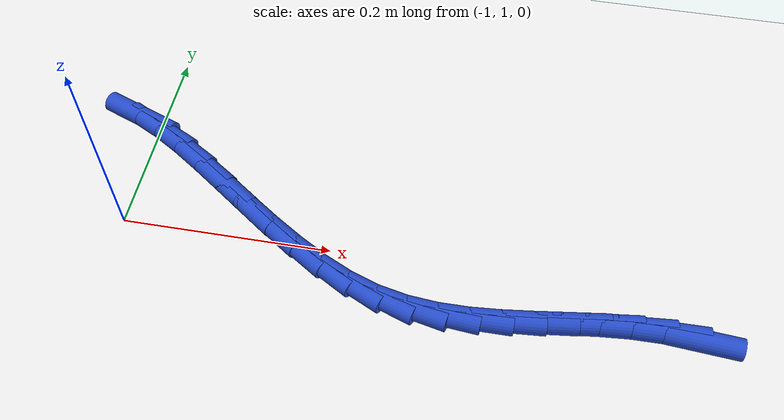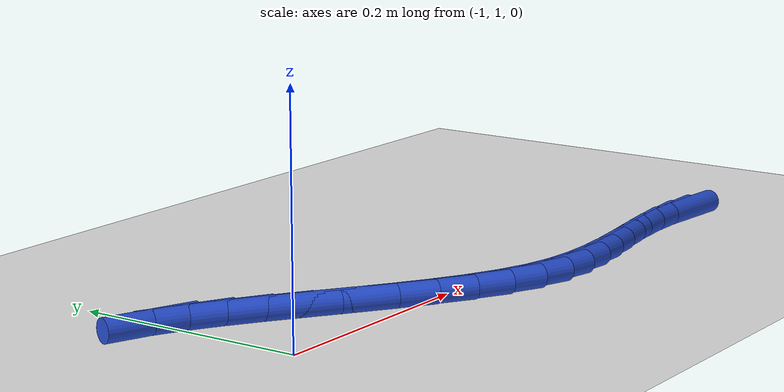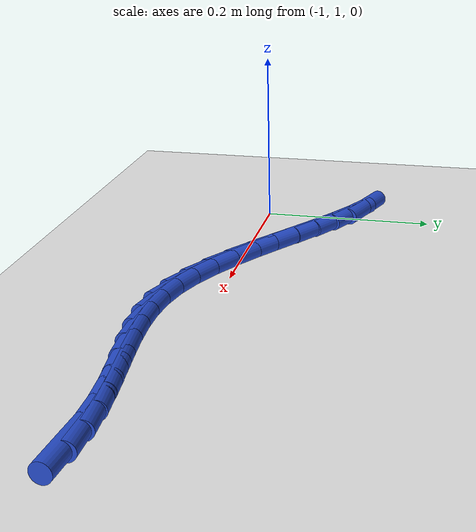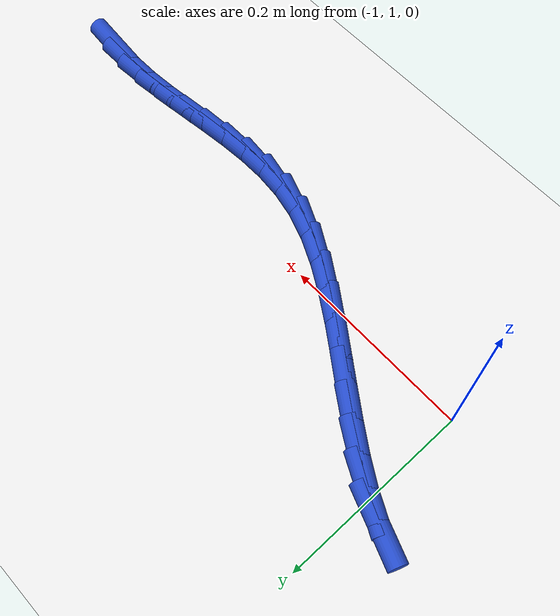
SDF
<sdf version="1.6">
 <world name="default">
  <model name="ground_plane">
   <static>1</static>
   <link name="link">
    <collision name="collision">
     <geometry><plane><normal>0 0 1</normal><size>100 100</size></plane></geometry>
     <surface><friction><ode><mu>100</mu><mu2>50</mu2></ode></friction></surface>
    </collision>
    <visual name="visual">
     <cast_shadows>0</cast_shadows>
     <geometry><plane><normal>0 0 1</normal><size>100 100</size></plane></geometry>
     <material>
      <script><uri>file://media/materials/scripts/gazebo.material</uri><name>Gazebo/WhiteGlow</name></script>
     </material>
    </visual>
   </link>
  </model>
  <model name="line">
   <link name="link_40">
    <pose>-0.46919206118875145 0.9611833768286024 0.01 0 1.57 -0.07848373821105482</pose>
    <collision name="collision">
     <geometry><cylinder><radius>0.01</radius><length>0.08</length></cylinder></geometry>
    </collision>
    <visual name="visual">
     <material>
      <script><name>Gazebo/Blue</name><uri>file://media/materials/scripts/gazebo.material</uri></script>
     </material>
     <geometry><cylinder><radius>0.01</radius><length>0.08</length></cylinder></geometry>
    </visual>
   </link>
   <link name="link_41">
    <pose>-0.49723121199268305 0.9633885237393826 0.01 0 1.57 0.01634159145770869</pose>
    <collision name="collision">
     <geometry><cylinder><radius>0.01</radius><length>0.08</length></cylinder></geometry>
    </collision>
    <visual name="visual">
     <material>
      <script><name>Gazebo/Blue</name><uri>file://media/materials/scripts/gazebo.material</uri></script>
     </material>
     <geometry><cylinder><radius>0.01</radius><length>0.08</length></cylinder></geometry>
    </visual>
   </link>
   <link name="link_42">
    <pose>-0.5252464171446485 0.9629306699452056 0.01 0 1.57 0.08371373332486362</pose>
    <collision name="collision">
     <geometry><cylinder><radius>0.01</radius><length>0.08</length></cylinder></geometry>
    </collision>
    <visual name="visual">
     <material>
      <script><name>Gazebo/Blue</name><uri>file://media/materials/scripts/gazebo.material</uri></script>
     </material>
     <geometry><cylinder><radius>0.01</radius><length>0.08</length></cylinder></geometry>
    </visual>
   </link>
   <link name="link_43">
    <pose>-0.5532449406345098 0.9605813183737756 0.01 0 1.57 0.12329362729203241</pose>
    <collision name="collision">
     <geometry><cylinder><radius>0.01</radius><length>0.08</length></cylinder></geometry>
    </collision>
    <visual name="visual">
     <material>
      <script><name>Gazebo/Blue</name><uri>file://media/materials/scripts/gazebo.material</uri></script>
     </material>
     <geometry><cylinder><radius>0.01</radius><length>0.08</length></cylinder></geometry>
    </visual>
   </link>
   <link name="link_44">
    <pose>-0.5812343561871295 0.9571128086605015 0.01 0 1.57 0.13548558379407333</pose>
    <collision name="collision">
     <geometry><cylinder><radius>0.01</radius><length>0.08</length></cylinder></geometry>
    </collision>
    <visual name="visual">
     <material>
      <script><name>Gazebo/Blue</name><uri>file://media/materials/scripts/gazebo.material</uri></script>
     </material>
     <geometry><cylinder><radius>0.01</radius><length>0.08</length></cylinder></geometry>
    </visual>
   </link>
   <link name="link_45">
    <pose>-0.6092222375273703 0.9532974804407918 0.01 0 1.57 0.12050413117563119</pose>
    <collision name="collision">
     <geometry><cylinder><radius>0.01</radius><length>0.08</length></cylinder></geometry>
    </collision>
    <visual name="visual">
     <material>
      <script><name>Gazebo/Blue</name><uri>file://media/materials/scripts/gazebo.material</uri></script>
     </material>
     <geometry><cylinder><radius>0.01</radius><length>0.08</length></cylinder></geometry>
    </visual>
   </link>
   <link name="link_46">
    <pose>-0.6372161583800946 0.9499076733500558 0.01 0 1.57 0.07810353562635447</pose>
    <collision name="collision">
     <geometry><cylinder><radius>0.01</radius><length>0.08</length></cylinder></geometry>
    </collision>
    <visual name="visual">
     <material>
      <script><name>Gazebo/Blue</name><uri>file://media/materials/scripts/gazebo.material</uri></script>
     </material>
     <geometry><cylinder><radius>0.01</radius><length>0.08</length></cylinder></geometry>
    </visual>
   </link>
   <link name="link_47">
    <pose>-0.6652236924701649 0.9477157270237014 0.01 0 1.57 0.007911217210608718</pose>
    <collision name="collision">
     <geometry><cylinder><radius>0.01</radius><length>0.08</length></cylinder></geometry>
    </collision>
    <visual name="visual">
     <material>
      <script><name>Gazebo/Blue</name><uri>file://media/materials/scripts/gazebo.material</uri></script>
     </material>
     <geometry><cylinder><radius>0.01</radius><length>0.08</length></cylinder></geometry>
    </visual>
   </link>
   <link name="link_48">
    <pose>-0.6932524135224438 0.9474939810971381 0.01 0 1.57 -0.08960334484534141</pose>
    <collision name="collision">
     <geometry><cylinder><radius>0.01</radius><length>0.08</length></cylinder></geometry>
    </collision>
    <visual name="visual">
     <material>
      <script><name>Gazebo/Blue</name><uri>file://media/materials/scripts/gazebo.material</uri></script>
     </material>
     <geometry><cylinder><radius>0.01</radius><length>0.08</length></cylinder></geometry>
    </visual>
   </link>
   <link name="link_49">
    <pose>-0.7213098952617942 0.9500147752057746 0.01 0 1.57 -0.21162316478883456</pose>
    <collision name="collision">
     <geometry><cylinder><radius>0.01</radius><length>0.08</length></cylinder></geometry>
    </collision>
    <visual name="visual">
     <material>
      <script><name>Gazebo/Blue</name><uri>file://media/materials/scripts/gazebo.material</uri></script>
     </material>
     <geometry><cylinder><radius>0.01</radius><length>0.08</length></cylinder></geometry>
    </visual>
   </link>
   <link name="link_50">
    <pose>-0.7494037114097462 0.9560504489203547 0.01 0 1.57 -0.34343479795915616</pose>
    <collision name="collision">
     <geometry><cylinder><radius>0.01</radius><length>0.08</length></cylinder></geometry>
    </collision>
    <visual name="visual">
     <material>
      <script><name>Gazebo/Blue</name><uri>file://media/materials/scripts/gazebo.material</uri></script>
     </material>
     <geometry><cylinder><radius>0.01</radius><length>0.08</length></cylinder></geometry>
    </visual>
   </link>
   <link name="link_51">
    <pose>-0.7775277509767594 0.9661077795008626 0.01 0 1.57 -0.44919716350614924</pose>
    <collision name="collision">
     <geometry><cylinder><radius>0.01</radius><length>0.08</length></cylinder></geometry>
    </collision>
    <visual name="visual">
     <material>
      <script><name>Gazebo/Blue</name><uri>file://media/materials/scripts/gazebo.material</uri></script>
     </material>
     <geometry><cylinder><radius>0.01</radius><length>0.08</length></cylinder></geometry>
    </visual>
   </link>
   <link name="link_52">
    <pose>-0.8056221863145253 0.9796511312578662 0.01 0 1.57 -0.5256570968957178</pose>
    <collision name="collision">
     <geometry><cylinder><radius>0.01</radius><length>0.08</length></cylinder></geometry>
    </collision>
    <visual name="visual">
     <material>
      <script><name>Gazebo/Blue</name><uri>file://media/materials/scripts/gazebo.material</uri></script>
     </material>
     <geometry><cylinder><radius>0.01</radius><length>0.08</length></cylinder></geometry>
    </visual>
   </link>
   <link name="link_53">
    <pose>-0.8336140114021082 0.9958891320769175 0.01 0 1.57 -0.577908797847344</pose>
    <collision name="collision">
     <geometry><cylinder><radius>0.01</radius><length>0.08</length></cylinder></geometry>
    </collision>
    <visual name="visual">
     <material>
      <script><name>Gazebo/Blue</name><uri>file://media/materials/scripts/gazebo.material</uri></script>
     </material>
     <geometry><cylinder><radius>0.01</radius><length>0.08</length></cylinder></geometry>
    </visual>
   </link>
   <link name="link_54">
    <pose>-0.8614302202185751 1.0140304098435708 0.01 0 1.57 -0.6096508480563497</pose>
    <collision name="collision">
     <geometry><cylinder><radius>0.01</radius><length>0.08</length></cylinder></geometry>
    </collision>
    <visual name="visual">
     <material>
      <script><name>Gazebo/Blue</name><uri>file://media/materials/scripts/gazebo.material</uri></script>
     </material>
     <geometry><cylinder><radius>0.01</radius><length>0.08</length></cylinder></geometry>
    </visual>
   </link>
   <link name="link_55">
    <pose>-0.8889978067429898 1.0332835924433783 0.01 0 1.57 -0.6229738127213336</pose>
    <collision name="collision">
     <geometry><cylinder><radius>0.01</radius><length>0.08</length></cylinder></geometry>
    </collision>
    <visual name="visual">
     <material>
      <script><name>Gazebo/Blue</name><uri>file://media/materials/scripts/gazebo.material</uri></script>
     </material>
     <geometry><cylinder><radius>0.01</radius><length>0.08</length></cylinder></geometry>
    </visual>
   </link>
   <link name="link_56">
    <pose>-0.9162437649544183 1.0528573077618932 0.01 0 1.57 -0.6183569386729377</pose>
    <collision name="collision">
     <geometry><cylinder><radius>0.01</radius><length>0.08</length></cylinder></geometry>
    </collision>
    <visual name="visual">
     <material>
      <script><name>Gazebo/Blue</name><uri>file://media/materials/scripts/gazebo.material</uri></script>
     </material>
     <geometry><cylinder><radius>0.01</radius><length>0.08</length></cylinder></geometry>
    </visual>
   </link>
   <link name="link_57">
    <pose>-0.943095088831926 1.0719601836846686 0.01 0 1.57 -0.5945740543337875</pose>
    <collision name="collision">
     <geometry><cylinder><radius>0.01</radius><length>0.08</length></cylinder></geometry>
    </collision>
    <visual name="visual">
     <material>
      <script><name>Gazebo/Blue</name><uri>file://media/materials/scripts/gazebo.material</uri></script>
     </material>
     <geometry><cylinder><radius>0.01</radius><length>0.08</length></cylinder></geometry>
    </visual>
   </link>
   <link name="link_58">
    <pose>-0.9694787723545778 1.089800848097257 0.01 0 1.57 -0.5483835461081852</pose>
    <collision name="collision">
     <geometry><cylinder><radius>0.01</radius><length>0.08</length></cylinder></geometry>
    </collision>
    <visual name="visual">
     <material>
      <script><name>Gazebo/Blue</name><uri>file://media/materials/scripts/gazebo.material</uri></script>
     </material>
     <geometry><cylinder><radius>0.01</radius><length>0.08</length></cylinder></geometry>
    </visual>
   </link>
   <link name="link_59">
    <pose>-0.9953218095014391 1.1055879288852113 0.01 0 1.57 -0.4739762023925113</pose>
    <collision name="collision">
     <geometry><cylinder><radius>0.01</radius><length>0.08</length></cylinder></geometry>
    </collision>
    <visual name="visual">
     <material>
      <script><name>Gazebo/Blue</name><uri>file://media/materials/scripts/gazebo.material</uri></script>
     </material>
     <geometry><cylinder><radius>0.01</radius><length>0.08</length></cylinder></geometry>
    </visual>
   </link>
   <link name="link_60">
    <pose>-1.0205511942515753 1.118530053934085 0.01 0 1.57 -0.3624191044341295</pose>
    <collision name="collision">
     <geometry><cylinder><radius>0.01</radius><length>0.08</length></cylinder></geometry>
    </collision>
    <visual name="visual">
     <material>
      <script><name>Gazebo/Blue</name><uri>file://media/materials/scripts/gazebo.material</uri></script>
     </material>
     <geometry><cylinder><radius>0.01</radius><length>0.08</length></cylinder></geometry>
    </visual>
   </link>
  </model>
 </world>
</sdf>
